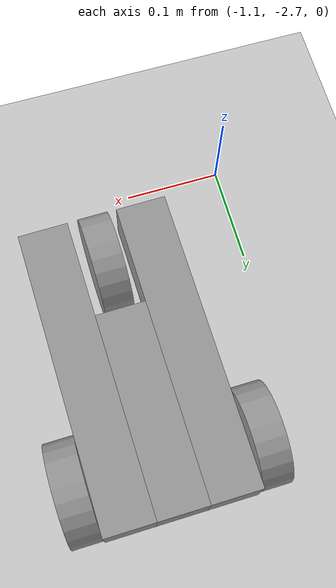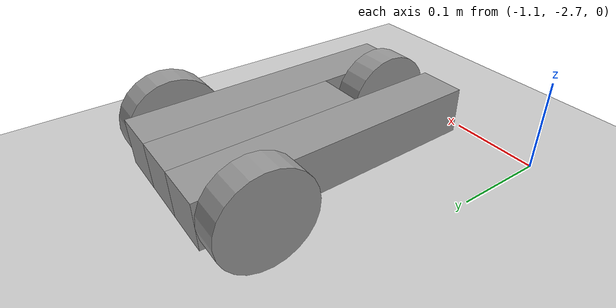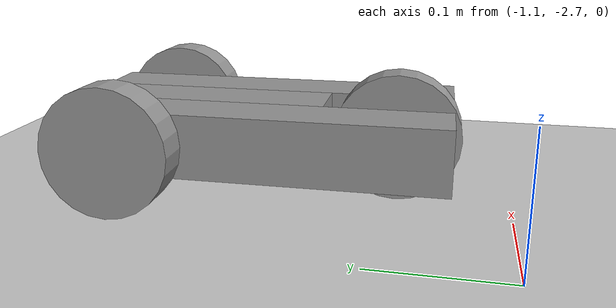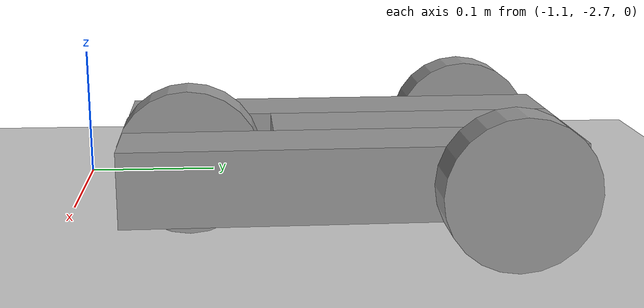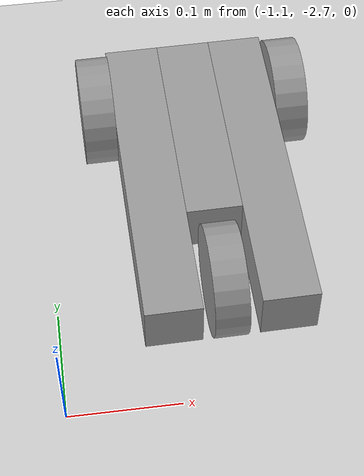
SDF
<sdf version="1.6">
 <world name="default">
  <model name="ground_plane">
   <static>1</static>
   <link name="link">
    <collision name="collision">
     <geometry><plane><normal>0 0 1</normal><size>100 100</size></plane></geometry>
     <surface><friction><ode><mu>100</mu><mu2>50</mu2></ode></friction></surface>
    </collision>
    <visual name="visual">
     <cast_shadows>0</cast_shadows>
     <geometry><plane><normal>0 0 1</normal><size>100 100</size></plane></geometry>
     <material>
      <script><uri>file://media/materials/scripts/gazebo.material</uri><name>Gazebo/Grey</name></script>
     </material>
    </visual>
   </link>
  </model>
  <model name="tricycle">
   <link name="link_0_clone">
    <pose>0.05011 -0.0238 0 0 -0 0</pose>
    <inertial>
     <mass>1</mass>
     <inertia>
      <ixx>0.166667</ixx>
      <ixy>0</ixy>
      <ixz>0</ixz>
      <iyy>0.166667</iyy>
      <iyz>0</iyz>
      <izz>0.166667</izz>
     </inertia>
    </inertial>
    <visual name="visual">
     <geometry><box><size>0.05 0.3 0.05</size></box></geometry>
     <material>
      <lighting>1</lighting>
      <script><uri>file://media/materials/scripts/gazebo.material</uri><name>Gazebo/Grey</name></script>
      <shader type="pixel"><normal_map>__default__</normal_map></shader>
      <ambient>0.3 0.3 0.3 1</ambient>
      <diffuse>0.7 0.7 0.7 1</diffuse>
      <specular>0.01 0.01 0.01 1</specular>
      <emissive>0 0 0 1</emissive>
     </material>
    </visual>
    <collision name="collision">
     <geometry><box><size>0.05 0.3 0.05</size></box></geometry>
     <surface>
      <friction>
       <ode><mu>1</mu><mu2>1</mu2><fdir1>0 0 0</fdir1><slip1>0</slip1><slip2>0</slip2></ode>
       <torsional>
        <coefficient>1</coefficient>
        <patch_radius>0</patch_radius>
        <surface_radius>0</surface_radius>
        <use_patch_radius>1</use_patch_radius>
        <ode><slip>0</slip></ode>
       </torsional>
      </friction>
      <bounce><restitution_coefficient>0</restitution_coefficient><threshold>1e+06</threshold></bounce>
      <contact>
       <collide_without_contact>0</collide_without_contact>
       <collide_without_contact_bitmask>1</collide_without_contact_bitmask>
       <collide_bitmask>1</collide_bitmask>
       <ode>
        <soft_cfm>0</soft_cfm>
        <soft_erp>0.2</soft_erp>
        <kp>1e+13</kp>
        <kd>1</kd>
        <max_vel>0.01</max_vel>
        <min_depth>0</min_depth>
       </ode>
       <bullet>
        <split_impulse>1</split_impulse>
        <split_impulse_penetration_threshold>-0.01</split_impulse_penetration_threshold>
        <soft_cfm>0</soft_cfm>
        <soft_erp>0.2</soft_erp>
        <kp>1e+13</kp>
        <kd>1</kd>
       </bullet>
      </contact>
     </surface>
    </collision>
   </link>
   <link name="link_0_clone_0">
    <pose>0.00011 0.0262 0 0 -0 0</pose>
    <inertial>
     <mass>1</mass>
     <inertia>
      <ixx>0.166667</ixx>
      <ixy>0</ixy>
      <ixz>0</ixz>
      <iyy>0.166667</iyy>
      <iyz>0</iyz>
      <izz>0.166667</izz>
     </inertia>
    </inertial>
    <visual name="visual">
     <geometry><box><size>0.05 0.2 0.05</size></box></geometry>
     <material>
      <lighting>1</lighting>
      <script><uri>file://media/materials/scripts/gazebo.material</uri><name>Gazebo/Grey</name></script>
      <shader type="pixel"><normal_map>__default__</normal_map></shader>
      <ambient>0.3 0.3 0.3 1</ambient>
      <diffuse>0.7 0.7 0.7 1</diffuse>
      <specular>0.01 0.01 0.01 1</specular>
      <emissive>0 0 0 1</emissive>
     </material>
    </visual>
    <collision name="collision">
     <geometry><box><size>0.05 0.2 0.05</size></box></geometry>
     <surface>
      <friction>
       <ode><mu>1</mu><mu2>1</mu2><fdir1>0 0 0</fdir1><slip1>0</slip1><slip2>0</slip2></ode>
       <torsional>
        <coefficient>1</coefficient>
        <patch_radius>0</patch_radius>
        <surface_radius>0</surface_radius>
        <use_patch_radius>1</use_patch_radius>
        <ode><slip>0</slip></ode>
       </torsional>
      </friction>
      <bounce><restitution_coefficient>0</restitution_coefficient><threshold>1e+06</threshold></bounce>
      <contact>
       <collide_without_contact>0</collide_without_contact>
       <collide_without_contact_bitmask>1</collide_without_contact_bitmask>
       <collide_bitmask>1</collide_bitmask>
       <ode>
        <soft_cfm>0</soft_cfm>
        <soft_erp>0.2</soft_erp>
        <kp>1e+13</kp>
        <kd>1</kd>
        <max_vel>0.01</max_vel>
        <min_depth>0</min_depth>
       </ode>
       <bullet>
        <split_impulse>1</split_impulse>
        <split_impulse_penetration_threshold>-0.01</split_impulse_penetration_threshold>
        <soft_cfm>0</soft_cfm>
        <soft_erp>0.2</soft_erp>
        <kp>1e+13</kp>
        <kd>1</kd>
       </bullet>
      </contact>
     </surface>
    </collision>
   </link>
   <link name="link_0_clone_clone">
    <pose>-0.04989 -0.0238 0 0 -0 0</pose>
    <inertial>
     <mass>1</mass>
     <inertia>
      <ixx>0.166667</ixx>
      <ixy>0</ixy>
      <ixz>0</ixz>
      <iyy>0.166667</iyy>
      <iyz>0</iyz>
      <izz>0.166667</izz>
     </inertia>
    </inertial>
    <visual name="visual">
     <geometry><box><size>0.05 0.3 0.05</size></box></geometry>
     <material>
      <lighting>1</lighting>
      <script><uri>file://media/materials/scripts/gazebo.material</uri><name>Gazebo/Grey</name></script>
      <shader type="pixel"><normal_map>__default__</normal_map></shader>
      <ambient>0.3 0.3 0.3 1</ambient>
      <diffuse>0.7 0.7 0.7 1</diffuse>
      <specular>0.01 0.01 0.01 1</specular>
      <emissive>0 0 0 1</emissive>
     </material>
    </visual>
    <collision name="collision">
     <geometry><box><size>0.05 0.3 0.05</size></box></geometry>
     <surface>
      <friction>
       <ode><mu>1</mu><mu2>1</mu2><fdir1>0 0 0</fdir1><slip1>0</slip1><slip2>0</slip2></ode>
       <torsional>
        <coefficient>1</coefficient>
        <patch_radius>0</patch_radius>
        <surface_radius>0</surface_radius>
        <use_patch_radius>1</use_patch_radius>
        <ode><slip>0</slip></ode>
       </torsional>
      </friction>
      <bounce><restitution_coefficient>0</restitution_coefficient><threshold>1e+06</threshold></bounce>
      <contact>
       <collide_without_contact>0</collide_without_contact>
       <collide_without_contact_bitmask>1</collide_without_contact_bitmask>
       <collide_bitmask>1</collide_bitmask>
       <ode>
        <soft_cfm>0</soft_cfm>
        <soft_erp>0.2</soft_erp>
        <kp>1e+13</kp>
        <kd>1</kd>
        <max_vel>0.01</max_vel>
        <min_depth>0</min_depth>
       </ode>
       <bullet>
        <split_impulse>1</split_impulse>
        <split_impulse_penetration_threshold>-0.01</split_impulse_penetration_threshold>
        <soft_cfm>0</soft_cfm>
        <soft_erp>0.2</soft_erp>
        <kp>1e+13</kp>
        <kd>1</kd>
       </bullet>
      </contact>
     </surface>
    </collision>
   </link>
   <link name="link_1">
    <pose>-0.000551 -0.131 0 0 -0 0</pose>
    <inertial>
     <mass>1</mass>
     <inertia><ixx>0.145833</ixx><ixy>0</ixy><ixz>0</ixz><iyy>0.145833</iyy><iyz>0</iyz><izz>0.125</izz></inertia>
    </inertial>
    <visual name="visual">
     <pose>0 0 0 0 1.5707 0</pose>
     <geometry><cylinder><radius>0.05</radius><length>0.03</length></cylinder></geometry>
     <material>
      <lighting>1</lighting>
      <script><uri>file://media/materials/scripts/gazebo.material</uri><name>Gazebo/Grey</name></script>
      <shader type="pixel"><normal_map>__default__</normal_map></shader>
      <ambient>0.3 0.3 0.3 1</ambient>
      <diffuse>0.7 0.7 0.7 1</diffuse>
      <specular>0.01 0.01 0.01 1</specular>
      <emissive>0 0 0 1</emissive>
     </material>
    </visual>
    <collision name="collision">
     <pose>0 0 0 0 1.5707 0</pose>
     <geometry><cylinder><radius>0.05</radius><length>0.03</length></cylinder></geometry>
     <surface>
      <friction>
       <ode><mu>1</mu><mu2>1</mu2><fdir1>0 0 0</fdir1><slip1>0</slip1><slip2>0</slip2></ode>
       <torsional>
        <coefficient>1</coefficient>
        <patch_radius>0</patch_radius>
        <surface_radius>0</surface_radius>
        <use_patch_radius>1</use_patch_radius>
        <ode><slip>0</slip></ode>
       </torsional>
      </friction>
      <bounce><restitution_coefficient>0</restitution_coefficient><threshold>1e+06</threshold></bounce>
      <contact>
       <collide_without_contact>0</collide_without_contact>
       <collide_without_contact_bitmask>1</collide_without_contact_bitmask>
       <collide_bitmask>1</collide_bitmask>
       <ode>
        <soft_cfm>0</soft_cfm>
        <soft_erp>0.2</soft_erp>
        <kp>1e+13</kp>
        <kd>1</kd>
        <max_vel>0.01</max_vel>
        <min_depth>0</min_depth>
       </ode>
       <bullet>
        <split_impulse>1</split_impulse>
        <split_impulse_penetration_threshold>-0.01</split_impulse_penetration_threshold>
        <soft_cfm>0</soft_cfm>
        <soft_erp>0.2</soft_erp>
        <kp>1e+13</kp>
        <kd>1</kd>
       </bullet>
      </contact>
     </surface>
    </collision>
   </link>
   <link name="link_1_clone">
    <pose>0.090114 0.0762 0 0 -0 0</pose>
    <inertial>
     <mass>1</mass>
     <inertia><ixx>0.145833</ixx><ixy>0</ixy><ixz>0</ixz><iyy>0.145833</iyy><iyz>0</iyz><izz>0.125</izz></inertia>
    </inertial>
    <visual name="visual">
     <pose>0 0 0 0 1.5707 0</pose>
     <geometry><cylinder><radius>0.05</radius><length>0.03</length></cylinder></geometry>
     <material>
      <lighting>1</lighting>
      <script><uri>file://media/materials/scripts/gazebo.material</uri><name>Gazebo/Grey</name></script>
      <shader type="pixel"><normal_map>__default__</normal_map></shader>
      <ambient>0.3 0.3 0.3 1</ambient>
      <diffuse>0.7 0.7 0.7 1</diffuse>
      <specular>0.01 0.01 0.01 1</specular>
      <emissive>0 0 0 1</emissive>
     </material>
    </visual>
    <collision name="collision">
     <pose>0 0 0 0 1.5707 0</pose>
     <geometry><cylinder><radius>0.05</radius><length>0.03</length></cylinder></geometry>
     <surface>
      <friction>
       <ode><mu>1</mu><mu2>1</mu2><fdir1>0 0 0</fdir1><slip1>0</slip1><slip2>0</slip2></ode>
       <torsional>
        <coefficient>1</coefficient>
        <patch_radius>0</patch_radius>
        <surface_radius>0</surface_radius>
        <use_patch_radius>1</use_patch_radius>
        <ode><slip>0</slip></ode>
       </torsional>
      </friction>
      <bounce><restitution_coefficient>0</restitution_coefficient><threshold>1e+06</threshold></bounce>
      <contact>
       <collide_without_contact>0</collide_without_contact>
       <collide_without_contact_bitmask>1</collide_without_contact_bitmask>
       <collide_bitmask>1</collide_bitmask>
       <ode>
        <soft_cfm>0</soft_cfm>
        <soft_erp>0.2</soft_erp>
        <kp>1e+13</kp>
        <kd>1</kd>
        <max_vel>0.01</max_vel>
        <min_depth>0</min_depth>
       </ode>
       <bullet>
        <split_impulse>1</split_impulse>
        <split_impulse_penetration_threshold>-0.01</split_impulse_penetration_threshold>
        <soft_cfm>0</soft_cfm>
        <soft_erp>0.2</soft_erp>
        <kp>1e+13</kp>
        <kd>1</kd>
       </bullet>
      </contact>
     </surface>
    </collision>
   </link>
   <link name="link_1_clone_0">
    <pose>-0.089895 0.0762 0 0 -0 0</pose>
    <inertial>
     <mass>1</mass>
     <inertia><ixx>0.145833</ixx><ixy>0</ixy><ixz>0</ixz><iyy>0.145833</iyy><iyz>0</iyz><izz>0.125</izz></inertia>
    </inertial>
    <visual name="visual">
     <pose>0 0 0 0 1.5707 0</pose>
     <geometry><cylinder><radius>0.05</radius><length>0.03</length></cylinder></geometry>
     <material>
      <lighting>1</lighting>
      <script><uri>file://media/materials/scripts/gazebo.material</uri><name>Gazebo/Grey</name></script>
      <shader type="pixel"><normal_map>__default__</normal_map></shader>
      <ambient>0.3 0.3 0.3 1</ambient>
      <diffuse>0.7 0.7 0.7 1</diffuse>
      <specular>0.01 0.01 0.01 1</specular>
      <emissive>0 0 0 1</emissive>
     </material>
    </visual>
    <collision name="collision">
     <pose>0 0 0 0 1.5707 0</pose>
     <geometry><cylinder><radius>0.05</radius><length>0.03</length></cylinder></geometry>
     <surface>
      <friction>
       <ode><mu>1</mu><mu2>1</mu2><fdir1>0 0 0</fdir1><slip1>0</slip1><slip2>0</slip2></ode>
       <torsional>
        <coefficient>1</coefficient>
        <patch_radius>0</patch_radius>
        <surface_radius>0</surface_radius>
        <use_patch_radius>1</use_patch_radius>
        <ode><slip>0</slip></ode>
       </torsional>
      </friction>
      <bounce><restitution_coefficient>0</restitution_coefficient><threshold>1e+06</threshold></bounce>
      <contact>
       <collide_without_contact>0</collide_without_contact>
       <collide_without_contact_bitmask>1</collide_without_contact_bitmask>
       <collide_bitmask>1</collide_bitmask>
       <ode>
        <soft_cfm>0</soft_cfm>
        <soft_erp>0.2</soft_erp>
        <kp>1e+13</kp>
        <kd>1</kd>
        <max_vel>0.01</max_vel>
        <min_depth>0</min_depth>
       </ode>
       <bullet>
        <split_impulse>1</split_impulse>
        <split_impulse_penetration_threshold>-0.01</split_impulse_penetration_threshold>
        <soft_cfm>0</soft_cfm>
        <soft_erp>0.2</soft_erp>
        <kp>1e+13</kp>
        <kd>1</kd>
       </bullet>
      </contact>
     </surface>
    </collision>
   </link>
   <joint name="link_0_clone_0_JOINT_0" type="fixed">
    <parent>link_0_clone_0</parent>
    <child>link_0_clone</child>
    <physics>
     <ode><limit><cfm>0</cfm><erp>0.2</erp></limit><suspension><cfm>0</cfm><erp>0.2</erp></suspension></ode>
    </physics>
   </joint>
   <joint name="link_0_clone_0_JOINT_2" type="fixed">
    <parent>link_0_clone_0</parent>
    <child>link_0_clone_clone</child>
    <physics>
     <ode><limit><cfm>0</cfm><erp>0.2</erp></limit><suspension><cfm>0</cfm><erp>0.2</erp></suspension></ode>
    </physics>
   </joint>
   <joint name="link_0_clone_JOINT_3" type="revolute">
    <parent>link_0_clone</parent>
    <child>link_1</child>
    <axis>
     <xyz>1 0 0</xyz>
     <use_parent_model_frame>0</use_parent_model_frame>
     <limit>
      <lower>-1.79769e+308</lower>
      <upper>1.79769e+308</upper>
      <effort>-1</effort>
      <velocity>-1</velocity>
     </limit>
     <dynamics>
      <spring_reference>0</spring_reference>
      <spring_stiffness>0</spring_stiffness>
      <damping>0</damping>
     </dynamics>
    </axis>
    <physics>
     <ode><limit><cfm>0</cfm><erp>0.2</erp></limit><suspension><cfm>0</cfm><erp>0.2</erp></suspension></ode>
    </physics>
   </joint>
   <joint name="link_0_clone_JOINT_4" type="revolute">
    <parent>link_0_clone</parent>
    <child>link_1_clone</child>
    <axis>
     <xyz>1 0 0</xyz>
     <use_parent_model_frame>0</use_parent_model_frame>
     <limit>
      <lower>-1.79769e+308</lower>
      <upper>1.79769e+308</upper>
      <effort>-1</effort>
      <velocity>-1</velocity>
     </limit>
     <dynamics>
      <spring_reference>0</spring_reference>
      <spring_stiffness>0</spring_stiffness>
      <damping>0</damping>
     </dynamics>
    </axis>
    <physics>
     <ode><limit><cfm>0</cfm><erp>0.2</erp></limit><suspension><cfm>0</cfm><erp>0.2</erp></suspension></ode>
    </physics>
   </joint>
   <joint name="link_0_clone_clone_JOINT_5" type="revolute">
    <parent>link_0_clone_clone</parent>
    <child>link_1_clone_0</child>
    <axis>
     <xyz>1 0 0</xyz>
     <use_parent_model_frame>0</use_parent_model_frame>
     <limit>
      <lower>-1.79769e+308</lower>
      <upper>1.79769e+308</upper>
      <effort>-1</effort>
      <velocity>-1</velocity>
     </limit>
     <dynamics>
      <spring_reference>0</spring_reference>
      <spring_stiffness>0</spring_stiffness>
      <damping>0</damping>
     </dynamics>
    </axis>
    <physics>
     <ode><limit><cfm>0</cfm><erp>0.2</erp></limit><suspension><cfm>0</cfm><erp>0.2</erp></suspension></ode>
    </physics>
   </joint>
   <static>0</static>
   <pose>-0.954799 -2.47977 0.050002 4e-06 1.7e-05 0.01671</pose>
  </model>
 </world>
</sdf>
